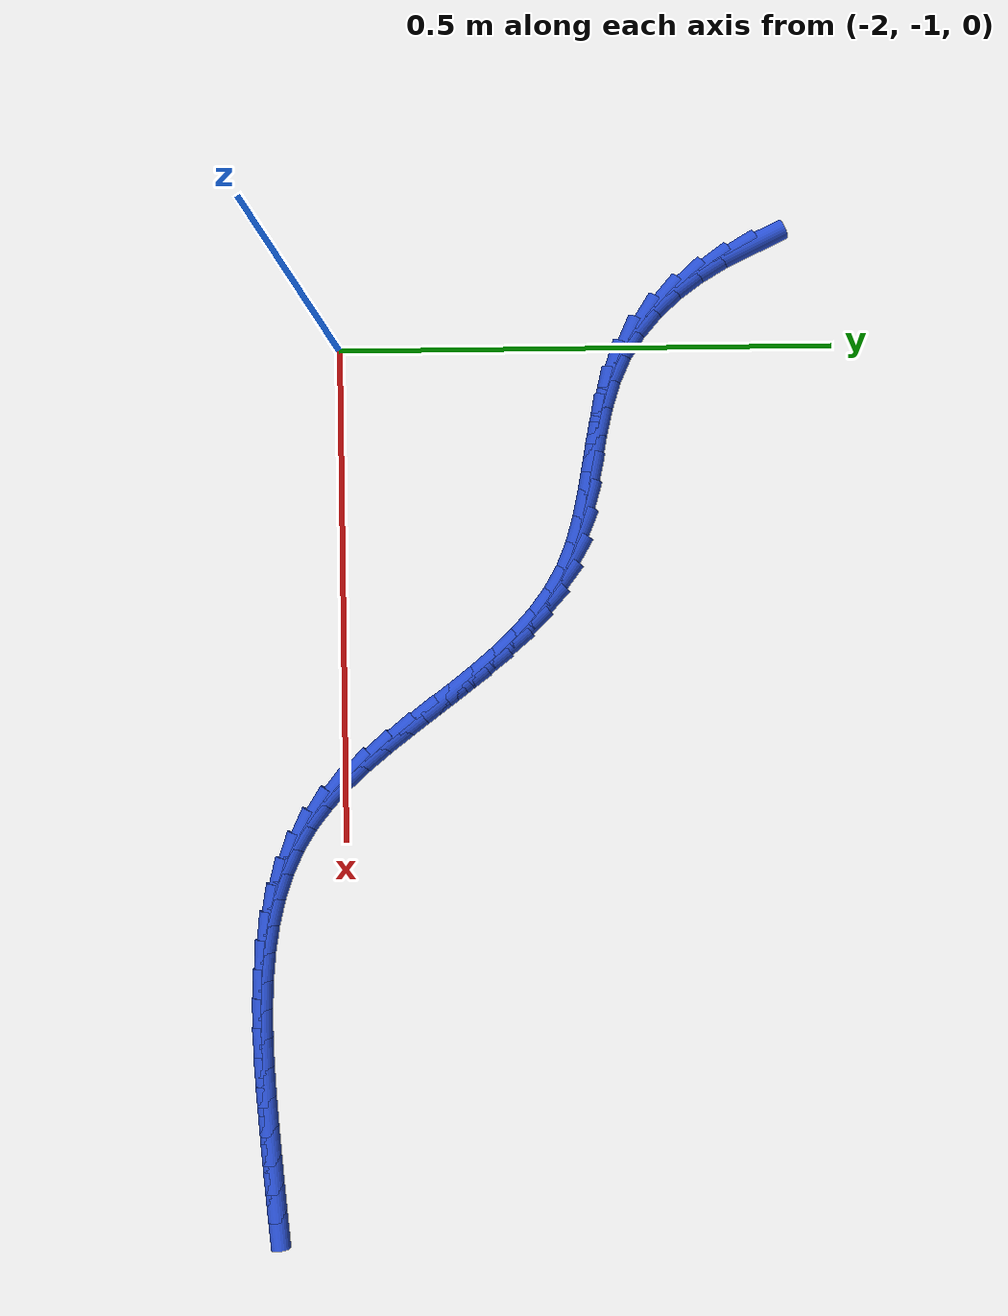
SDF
<sdf version="1.6">
 <world name="default">
  <model name="ground_plane">
   <static>1</static>
   <link name="link">
    <collision name="collision">
     <geometry><plane><normal>0 0 1</normal><size>100 100</size></plane></geometry>
     <surface><friction><ode><mu>100</mu><mu2>50</mu2></ode></friction></surface>
    </collision>
    <visual name="visual">
     <cast_shadows>0</cast_shadows>
     <geometry><plane><normal>0 0 1</normal><size>100 100</size></plane></geometry>
     <material>
      <script><uri>file://media/materials/scripts/gazebo.material</uri><name>Gazebo/WhiteGlow</name></script>
     </material>
    </visual>
   </link>
  </model>
  <model name="line">
   <link name="link_146">
    <pose>-2.098271333893653 -0.5847671808992047 0.01 0 1.57 -1.1224593406657335</pose>
    <collision name="collision">
     <geometry><cylinder><radius>0.01</radius><length>0.08</length></cylinder></geometry>
    </collision>
    <visual name="visual">
     <material>
      <script><name>Gazebo/Blue</name><uri>file://media/materials/scripts/gazebo.material</uri></script>
     </material>
     <geometry><cylinder><radius>0.01</radius><length>0.08</length></cylinder></geometry>
    </visual>
   </link>
   <link name="link_147">
    <pose>-2.085615308237305 -0.611078775763977 0.01 0 1.57 -1.0346275930546869</pose>
    <collision name="collision">
     <geometry><cylinder><radius>0.01</radius><length>0.08</length></cylinder></geometry>
    </collision>
    <visual name="visual">
     <material>
      <script><name>Gazebo/Blue</name><uri>file://media/materials/scripts/gazebo.material</uri></script>
     </material>
     <geometry><cylinder><radius>0.01</radius><length>0.08</length></cylinder></geometry>
    </visual>
   </link>
   <link name="link_148">
    <pose>-2.0707118358157843 -0.636158932249638 0.01 0 1.57 -0.9381584497270481</pose>
    <collision name="collision">
     <geometry><cylinder><radius>0.01</radius><length>0.08</length></cylinder></geometry>
    </collision>
    <visual name="visual">
     <material>
      <script><name>Gazebo/Blue</name><uri>file://media/materials/scripts/gazebo.material</uri></script>
     </material>
     <geometry><cylinder><radius>0.01</radius><length>0.08</length></cylinder></geometry>
    </visual>
   </link>
   <link name="link_149">
    <pose>-2.05361408397587 -0.6594794740705169 0.01 0 1.57 -0.8299134351160399</pose>
    <collision name="collision">
     <geometry><cylinder><radius>0.01</radius><length>0.08</length></cylinder></geometry>
    </collision>
    <visual name="visual">
     <material>
      <script><name>Gazebo/Blue</name><uri>file://media/materials/scripts/gazebo.material</uri></script>
     </material>
     <geometry><cylinder><radius>0.01</radius><length>0.08</length></cylinder></geometry>
    </visual>
   </link>
   <link name="link_150">
    <pose>-2.0343752200643395 -0.6805122249409428 0.01 0 1.57 -0.7069117094932775</pose>
    <collision name="collision">
     <geometry><cylinder><radius>0.01</radius><length>0.08</length></cylinder></geometry>
    </collision>
    <visual name="visual">
     <material>
      <script><name>Gazebo/Blue</name><uri>file://media/materials/scripts/gazebo.material</uri></script>
     </material>
     <geometry><cylinder><radius>0.01</radius><length>0.08</length></cylinder></geometry>
    </visual>
   </link>
   <link name="link_151">
    <pose>-2.0130484114279725 -0.698729008575246 0.01 0 1.57 -0.5669173712960701</pose>
    <collision name="collision">
     <geometry><cylinder><radius>0.01</radius><length>0.08</length></cylinder></geometry>
    </collision>
    <visual name="visual">
     <material>
      <script><name>Gazebo/Blue</name><uri>file://media/materials/scripts/gazebo.material</uri></script>
     </material>
     <geometry><cylinder><radius>0.01</radius><length>0.08</length></cylinder></geometry>
    </visual>
   </link>
   <link name="link_152">
    <pose>-1.989686825426148 -0.713601648729153 0.01 0 1.57 -0.4187853739925996</pose>
    <collision name="collision">
     <geometry><cylinder><radius>0.01</radius><length>0.08</length></cylinder></geometry>
    </collision>
    <visual name="visual">
     <material>
      <script><name>Gazebo/Blue</name><uri>file://media/materials/scripts/gazebo.material</uri></script>
     </material>
     <geometry><cylinder><radius>0.01</radius><length>0.08</length></cylinder></geometry>
    </visual>
   </link>
   <link name="link_153">
    <pose>-1.964418783433541 -0.7248488706396763 0.01 0 1.57 -0.30125973969449743</pose>
    <collision name="collision">
     <geometry><cylinder><radius>0.01</radius><length>0.08</length></cylinder></geometry>
    </collision>
    <visual name="visual">
     <material>
      <script><name>Gazebo/Blue</name><uri>file://media/materials/scripts/gazebo.material</uri></script>
     </material>
     <geometry><cylinder><radius>0.01</radius><length>0.08</length></cylinder></geometry>
    </visual>
   </link>
   <link name="link_154">
    <pose>-1.9376682638663008 -0.7331607137338225 0.01 0 1.57 -0.22353201280923238</pose>
    <collision name="collision">
     <geometry><cylinder><radius>0.01</radius><length>0.08</length></cylinder></geometry>
    </collision>
    <visual name="visual">
     <material>
      <script><name>Gazebo/Blue</name><uri>file://media/materials/scripts/gazebo.material</uri></script>
     </material>
     <geometry><cylinder><radius>0.01</radius><length>0.08</length></cylinder></geometry>
    </visual>
   </link>
   <link name="link_155">
    <pose>-1.909931940029957 -0.7394660400191256 0.01 0 1.57 -0.18313600810544542</pose>
    <collision name="collision">
     <geometry><cylinder><radius>0.01</radius><length>0.08</length></cylinder></geometry>
    </collision>
    <visual name="visual">
     <material>
      <script><name>Gazebo/Blue</name><uri>file://media/materials/scripts/gazebo.material</uri></script>
     </material>
     <geometry><cylinder><radius>0.01</radius><length>0.08</length></cylinder></geometry>
    </visual>
   </link>
   <link name="link_156">
    <pose>-1.8817064852300398 -0.7446937115031194 0.01 0 1.57 -0.17808107667337542</pose>
    <collision name="collision">
     <geometry><cylinder><radius>0.01</radius><length>0.08</length></cylinder></geometry>
    </collision>
    <visual name="visual">
     <material>
      <script><name>Gazebo/Blue</name><uri>file://media/materials/scripts/gazebo.material</uri></script>
     </material>
     <geometry><cylinder><radius>0.01</radius><length>0.08</length></cylinder></geometry>
    </visual>
   </link>
   <link name="link_157">
    <pose>-1.8534885727720791 -0.7497725901933376 0.01 0 1.57 -0.20834209221691066</pose>
    <collision name="collision">
     <geometry><cylinder><radius>0.01</radius><length>0.08</length></cylinder></geometry>
    </collision>
    <visual name="visual">
     <material>
      <script><name>Gazebo/Blue</name><uri>file://media/materials/scripts/gazebo.material</uri></script>
     </material>
     <geometry><cylinder><radius>0.01</radius><length>0.08</length></cylinder></geometry>
    </visual>
   </link>
   <link name="link_158">
    <pose>-1.825774875961605 -0.7556315380973145 0.01 0 1.57 -0.276071037254829</pose>
    <collision name="collision">
     <geometry><cylinder><radius>0.01</radius><length>0.08</length></cylinder></geometry>
    </collision>
    <visual name="visual">
     <material>
      <script><name>Gazebo/Blue</name><uri>file://media/materials/scripts/gazebo.material</uri></script>
     </material>
     <geometry><cylinder><radius>0.01</radius><length>0.08</length></cylinder></geometry>
    </visual>
   </link>
   <link name="link_159">
    <pose>-1.799062068104146 -0.7631994172225831 0.01 0 1.57 -0.384529962022674</pose>
    <collision name="collision">
     <geometry><cylinder><radius>0.01</radius><length>0.08</length></cylinder></geometry>
    </collision>
    <visual name="visual">
     <material>
      <script><name>Gazebo/Blue</name><uri>file://media/materials/scripts/gazebo.material</uri></script>
     </material>
     <geometry><cylinder><radius>0.01</radius><length>0.08</length></cylinder></geometry>
    </visual>
   </link>
   <link name="link_160">
    <pose>-1.7738460691558393 -0.7734036992690206 0.01 0 1.57 -0.5192288789210889</pose>
    <collision name="collision">
     <geometry><cylinder><radius>0.01</radius><length>0.08</length></cylinder></geometry>
    </collision>
    <visual name="visual">
     <material>
      <script><name>Gazebo/Blue</name><uri>file://media/materials/scripts/gazebo.material</uri></script>
     </material>
     <geometry><cylinder><radius>0.01</radius><length>0.08</length></cylinder></geometry>
    </visual>
   </link>
   <link name="link_161">
    <pose>-1.750417934119256 -0.7867937772978749 0.01 0 1.57 -0.6394877251184219</pose>
    <collision name="collision">
     <geometry><cylinder><radius>0.01</radius><length>0.08</length></cylinder></geometry>
    </collision>
    <visual name="visual">
     <material>
      <script><name>Gazebo/Blue</name><uri>file://media/materials/scripts/gazebo.material</uri></script>
     </material>
     <geometry><cylinder><radius>0.01</radius><length>0.08</length></cylinder></geometry>
    </visual>
   </link>
   <link name="link_162">
    <pose>-1.7285871757971971 -0.8030303573784665 0.01 0 1.57 -0.7374469674085129</pose>
    <collision name="collision">
     <geometry><cylinder><radius>0.01</radius><length>0.08</length></cylinder></geometry>
    </collision>
    <visual name="visual">
     <material>
      <script><name>Gazebo/Blue</name><uri>file://media/materials/scripts/gazebo.material</uri></script>
     </material>
     <geometry><cylinder><radius>0.01</radius><length>0.08</length></cylinder></geometry>
    </visual>
   </link>
   <link name="link_163">
    <pose>-1.7080941833047563 -0.82164657769068 0.01 0 1.57 -0.8132841269001972</pose>
    <collision name="collision">
     <geometry><cylinder><radius>0.01</radius><length>0.08</length></cylinder></geometry>
    </collision>
    <visual name="visual">
     <material>
      <script><name>Gazebo/Blue</name><uri>file://media/materials/scripts/gazebo.material</uri></script>
     </material>
     <geometry><cylinder><radius>0.01</radius><length>0.08</length></cylinder></geometry>
    </visual>
   </link>
   <link name="link_164">
    <pose>-1.6886793457570255 -0.8421755764143988 0.01 0 1.57 -0.86848279593493</pose>
    <collision name="collision">
     <geometry><cylinder><radius>0.01</radius><length>0.08</length></cylinder></geometry>
    </collision>
    <visual name="visual">
     <material>
      <script><name>Gazebo/Blue</name><uri>file://media/materials/scripts/gazebo.material</uri></script>
     </material>
     <geometry><cylinder><radius>0.01</radius><length>0.08</length></cylinder></geometry>
    </visual>
   </link>
   <link name="link_165">
    <pose>-1.6700830522690981 -0.8641504917295072 0.01 0 1.57 -0.9047705766746058</pose>
    <collision name="collision">
     <geometry><cylinder><radius>0.01</radius><length>0.08</length></cylinder></geometry>
    </collision>
    <visual name="visual">
     <material>
      <script><name>Gazebo/Blue</name><uri>file://media/materials/scripts/gazebo.material</uri></script>
     </material>
     <geometry><cylinder><radius>0.01</radius><length>0.08</length></cylinder></geometry>
    </visual>
   </link>
   <link name="link_166">
    <pose>-1.6520456919560667 -0.8871044618158888 0.01 0 1.57 -0.9235308380129534</pose>
    <collision name="collision">
     <geometry><cylinder><radius>0.01</radius><length>0.08</length></cylinder></geometry>
    </collision>
    <visual name="visual">
     <material>
      <script><name>Gazebo/Blue</name><uri>file://media/materials/scripts/gazebo.material</uri></script>
     </material>
     <geometry><cylinder><radius>0.01</radius><length>0.08</length></cylinder></geometry>
    </visual>
   </link>
   <link name="link_167">
    <pose>-1.6343076539330244 -0.9105706248534277 0.01 0 1.57 -0.9255361992670412</pose>
    <collision name="collision">
     <geometry><cylinder><radius>0.01</radius><length>0.08</length></cylinder></geometry>
    </collision>
    <visual name="visual">
     <material>
      <script><name>Gazebo/Blue</name><uri>file://media/materials/scripts/gazebo.material</uri></script>
     </material>
     <geometry><cylinder><radius>0.01</radius><length>0.08</length></cylinder></geometry>
    </visual>
   </link>
   <link name="link_168">
    <pose>-1.6166093273150637 -0.9340821190220078 0.01 0 1.57 -0.9108506022583114</pose>
    <collision name="collision">
     <geometry><cylinder><radius>0.01</radius><length>0.08</length></cylinder></geometry>
    </collision>
    <visual name="visual">
     <material>
      <script><name>Gazebo/Blue</name><uri>file://media/materials/scripts/gazebo.material</uri></script>
     </material>
     <geometry><cylinder><radius>0.01</radius><length>0.08</length></cylinder></geometry>
    </visual>
   </link>
   <link name="link_169">
    <pose>-1.598691101217278 -0.9571720825015133 0.01 0 1.57 -0.8788175520177486</pose>
    <collision name="collision">
     <geometry><cylinder><radius>0.01</radius><length>0.08</length></cylinder></geometry>
    </collision>
    <visual name="visual">
     <material>
      <script><name>Gazebo/Blue</name><uri>file://media/materials/scripts/gazebo.material</uri></script>
     </material>
     <geometry><cylinder><radius>0.01</radius><length>0.08</length></cylinder></geometry>
    </visual>
   </link>
   <link name="link_170">
    <pose>-1.5802933647547592 -0.9793736534718277 0.01 0 1.57 -0.8281265985254282</pose>
    <collision name="collision">
     <geometry><cylinder><radius>0.01</radius><length>0.08</length></cylinder></geometry>
    </collision>
    <visual name="visual">
     <material>
      <script><name>Gazebo/Blue</name><uri>file://media/materials/scripts/gazebo.material</uri></script>
     </material>
     <geometry><cylinder><radius>0.01</radius><length>0.08</length></cylinder></geometry>
    </visual>
   </link>
   <link name="link_171">
    <pose>-1.5611565070426017 -1.0002199701128354 0.01 0 1.57 -0.7570248985998828</pose>
    <collision name="collision">
     <geometry><cylinder><radius>0.01</radius><length>0.08</length></cylinder></geometry>
    </collision>
    <visual name="visual">
     <material>
      <script><name>Gazebo/Blue</name><uri>file://media/materials/scripts/gazebo.material</uri></script>
     </material>
     <geometry><cylinder><radius>0.01</radius><length>0.08</length></cylinder></geometry>
    </visual>
   </link>
   <link name="link_172">
    <pose>-1.5410209171958968 -1.01924417060442 0.01 0 1.57 -0.6638184118597018</pose>
    <collision name="collision">
     <geometry><cylinder><radius>0.01</radius><length>0.08</length></cylinder></geometry>
    </collision>
    <visual name="visual">
     <material>
      <script><name>Gazebo/Blue</name><uri>file://media/materials/scripts/gazebo.material</uri></script>
     </material>
     <geometry><cylinder><radius>0.01</radius><length>0.08</length></cylinder></geometry>
    </visual>
   </link>
   <link name="link_173">
    <pose>-1.5196269843297388 -1.0359793931264658 0.01 0 1.57 -0.5491222838317468</pose>
    <collision name="collision">
     <geometry><cylinder><radius>0.01</radius><length>0.08</length></cylinder></geometry>
    </collision>
    <visual name="visual">
     <material>
      <script><name>Gazebo/Blue</name><uri>file://media/materials/scripts/gazebo.material</uri></script>
     </material>
     <geometry><cylinder><radius>0.01</radius><length>0.08</length></cylinder></geometry>
    </visual>
   </link>
   <link name="link_174">
    <pose>-1.4967331668918138 -1.0499880791416647 0.01 0 1.57 -0.43200603334654236</pose>
    <collision name="collision">
     <geometry><cylinder><radius>0.01</radius><length>0.08</length></cylinder></geometry>
    </collision>
    <visual name="visual">
     <material>
      <script><name>Gazebo/Blue</name><uri>file://media/materials/scripts/gazebo.material</uri></script>
     </material>
     <geometry><cylinder><radius>0.01</radius><length>0.08</length></cylinder></geometry>
    </visual>
   </link>
   <link name="link_175">
    <pose>-1.472344479444079 -1.0612325135217942 0.01 0 1.57 -0.32751389203719444</pose>
    <collision name="collision">
     <geometry><cylinder><radius>0.01</radius><length>0.08</length></cylinder></geometry>
    </collision>
    <visual name="visual">
     <material>
      <script><name>Gazebo/Blue</name><uri>file://media/materials/scripts/gazebo.material</uri></script>
     </material>
     <geometry><cylinder><radius>0.01</radius><length>0.08</length></cylinder></geometry>
    </visual>
   </link>
   <link name="link_176">
    <pose>-1.4466442487579154 -1.069964152477615 0.01 0 1.57 -0.2369144062449006</pose>
    <collision name="collision">
     <geometry><cylinder><radius>0.01</radius><length>0.08</length></cylinder></geometry>
    </collision>
    <visual name="visual">
     <material>
      <script><name>Gazebo/Blue</name><uri>file://media/materials/scripts/gazebo.material</uri></script>
     </material>
     <geometry><cylinder><radius>0.01</radius><length>0.08</length></cylinder></geometry>
    </visual>
   </link>
   <link name="link_177">
    <pose>-1.4198197712706742 -1.0764408898812694 0.01 0 1.57 -0.1599861491661013</pose>
    <collision name="collision">
     <geometry><cylinder><radius>0.01</radius><length>0.08</length></cylinder></geometry>
    </collision>
    <visual name="visual">
     <material>
      <script><name>Gazebo/Blue</name><uri>file://media/materials/scripts/gazebo.material</uri></script>
     </material>
     <geometry><cylinder><radius>0.01</radius><length>0.08</length></cylinder></geometry>
    </visual>
   </link>
   <link name="link_178">
    <pose>-1.3920583434197087 -1.0809206196049002 0.01 0 1.57 -0.09583015434993235</pose>
    <collision name="collision">
     <geometry><cylinder><radius>0.01</radius><length>0.08</length></cylinder></geometry>
    </collision>
    <visual name="visual">
     <material>
      <script><name>Gazebo/Blue</name><uri>file://media/materials/scripts/gazebo.material</uri></script>
     </material>
     <geometry><cylinder><radius>0.01</radius><length>0.08</length></cylinder></geometry>
    </visual>
   </link>
   <link name="link_179">
    <pose>-1.363547261642372 -1.0836612355206499 0.01 0 1.57 -0.04329068647201005</pose>
    <collision name="collision">
     <geometry><cylinder><radius>0.01</radius><length>0.08</length></cylinder></geometry>
    </collision>
    <visual name="visual">
     <material>
      <script><name>Gazebo/Blue</name><uri>file://media/materials/scripts/gazebo.material</uri></script>
     </material>
     <geometry><cylinder><radius>0.01</radius><length>0.08</length></cylinder></geometry>
    </visual>
   </link>
   <link name="link_180">
    <pose>-1.3344738223760164 -1.0849206315006612 0.01 0 1.57 -0.0012248466980580585</pose>
    <collision name="collision">
     <geometry><cylinder><radius>0.01</radius><length>0.08</length></cylinder></geometry>
    </collision>
    <visual name="visual">
     <material>
      <script><name>Gazebo/Blue</name><uri>file://media/materials/scripts/gazebo.material</uri></script>
     </material>
     <geometry><cylinder><radius>0.01</radius><length>0.08</length></cylinder></geometry>
    </visual>
   </link>
   <link name="link_181">
    <pose>-1.3050253220579953 -1.0849567014170765 0.01 0 1.57 0.03134868097513637</pose>
    <collision name="collision">
     <geometry><cylinder><radius>0.01</radius><length>0.08</length></cylinder></geometry>
    </collision>
    <visual name="visual">
     <material>
      <script><name>Gazebo/Blue</name><uri>file://media/materials/scripts/gazebo.material</uri></script>
     </material>
     <geometry><cylinder><radius>0.01</radius><length>0.08</length></cylinder></geometry>
    </visual>
   </link>
   <link name="link_182">
    <pose>-1.275389057125661 -1.0840273391420387 0.01 0 1.57 0.05517609257754616</pose>
    <collision name="collision">
     <geometry><cylinder><radius>0.01</radius><length>0.08</length></cylinder></geometry>
    </collision>
    <visual name="visual">
     <material>
      <script><name>Gazebo/Blue</name><uri>file://media/materials/scripts/gazebo.material</uri></script>
     </material>
     <geometry><cylinder><radius>0.01</radius><length>0.08</length></cylinder></geometry>
    </visual>
   </link>
   <link name="link_183">
    <pose>-1.2457523240163664 -1.0823904385476903 0.01 0 1.57 0.07073245816348918</pose>
    <collision name="collision">
     <geometry><cylinder><radius>0.01</radius><length>0.08</length></cylinder></geometry>
    </collision>
    <visual name="visual">
     <material>
      <script><name>Gazebo/Blue</name><uri>file://media/materials/scripts/gazebo.material</uri></script>
     </material>
     <geometry><cylinder><radius>0.01</radius><length>0.08</length></cylinder></geometry>
    </visual>
   </link>
   <link name="link_184">
    <pose>-1.2163024191674643 -1.0803038935061737 0.01 0 1.57 0.07838070014198463</pose>
    <collision name="collision">
     <geometry><cylinder><radius>0.01</radius><length>0.08</length></cylinder></geometry>
    </collision>
    <visual name="visual">
     <material>
      <script><name>Gazebo/Blue</name><uri>file://media/materials/scripts/gazebo.material</uri></script>
     </material>
     <geometry><cylinder><radius>0.01</radius><length>0.08</length></cylinder></geometry>
    </visual>
   </link>
   <link name="link_185">
    <pose>-1.1872211595215056 -1.0780198046379241 0.01 0 1.57 0.08214544958064955</pose>
    <collision name="collision">
     <geometry><cylinder><radius>0.01</radius><length>0.08</length></cylinder></geometry>
    </collision>
    <visual name="visual">
     <material>
      <script><name>Gazebo/Blue</name><uri>file://media/materials/scripts/gazebo.material</uri></script>
     </material>
     <geometry><cylinder><radius>0.01</radius><length>0.08</length></cylinder></geometry>
    </visual>
   </link>
   <link name="link_186">
    <pose>-1.1585678618879214 -1.0756607580495356 0.01 0 1.57 0.08600813350652017</pose>
    <collision name="collision">
     <geometry><cylinder><radius>0.01</radius><length>0.08</length></cylinder></geometry>
    </collision>
    <visual name="visual">
     <material>
      <script><name>Gazebo/Blue</name><uri>file://media/materials/scripts/gazebo.material</uri></script>
     </material>
     <geometry><cylinder><radius>0.01</radius><length>0.08</length></cylinder></geometry>
    </visual>
   </link>
   <link name="link_187">
    <pose>-1.1302812715985893 -1.0732218644245075 0.01 0 1.57 0.09012163258154732</pose>
    <collision name="collision">
     <geometry><cylinder><radius>0.01</radius><length>0.08</length></cylinder></geometry>
    </collision>
    <visual name="visual">
     <material>
      <script><name>Gazebo/Blue</name><uri>file://media/materials/scripts/gazebo.material</uri></script>
     </material>
     <geometry><cylinder><radius>0.01</radius><length>0.08</length></cylinder></geometry>
    </visual>
   </link>
  </model>
 </world>
</sdf>
